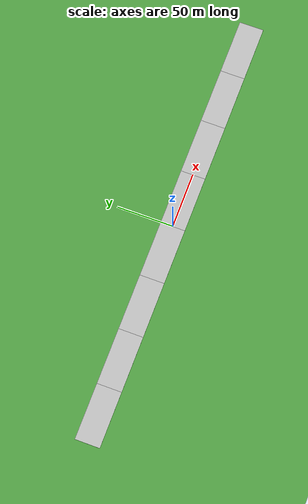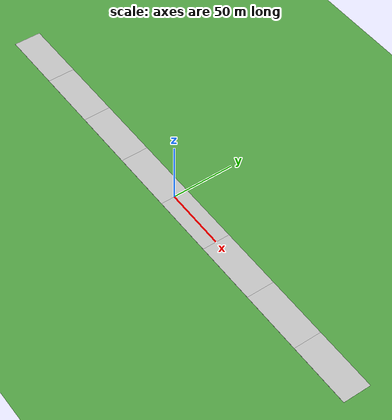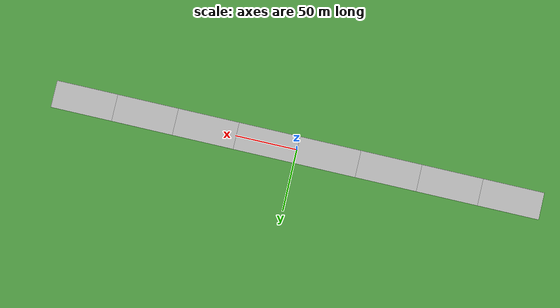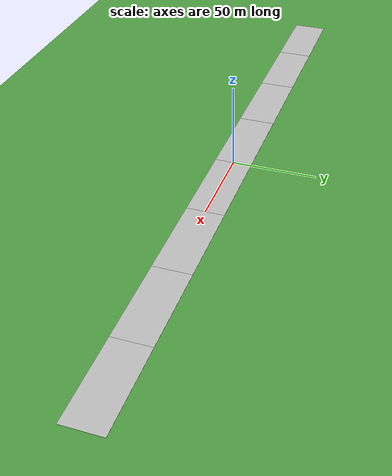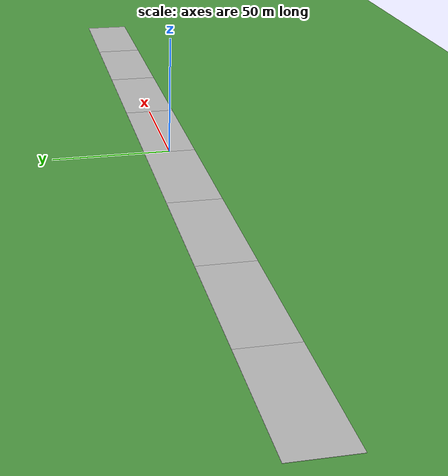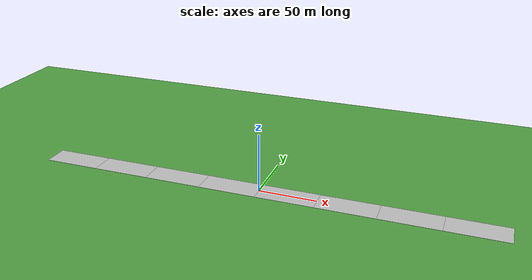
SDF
<sdf version="1.6">
 <world name="default">
  <light name="sun1" type="directional">
   <pose>0 0 1 0 -0 0</pose>
   <diffuse>0.8 0.8 0.8 1</diffuse>
   <specular>0.1 0.1 0.1 1</specular>
   <attenuation>
    <range>1000</range>
    <constant>0.9</constant>
    <linear>0.01</linear>
    <quadratic>0.001</quadratic>
   </attenuation>
   <direction>0.5 0 -0.5</direction>
  </light>
  <light name="sun2" type="directional">
   <pose>-200 0 1 0 -0 0</pose>
   <diffuse>0.8 0.8 0.8 1</diffuse>
   <specular>0.1 0.1 0.1 1</specular>
   <attenuation>
    <range>1000</range>
    <constant>0.9</constant>
    <linear>0.01</linear>
    <quadratic>0.001</quadratic>
   </attenuation>
   <direction>0.5 0 -0.5</direction>
  </light>
  <light name="sun3" type="directional">
   <pose>-100 0 1 0 -0 0</pose>
   <diffuse>0.8 0.8 0.8 1</diffuse>
   <specular>0.1 0.1 0.1 1</specular>
   <attenuation>
    <range>1000</range>
    <constant>0.9</constant>
    <linear>0.01</linear>
    <quadratic>0.001</quadratic>
   </attenuation>
   <direction>0.5 0 -0.5</direction>
  </light>
  <light name="sun4" type="directional">
   <pose>100 0 1 0 -0 0</pose>
   <diffuse>0.8 0.8 0.8 1</diffuse>
   <specular>0.1 0.1 0.1 1</specular>
   <attenuation>
    <range>1000</range>
    <constant>0.9</constant>
    <linear>0.01</linear>
    <quadratic>0.001</quadratic>
   </attenuation>
   <direction>0.5 0 -0.5</direction>
  </light>
  <gravity>0 0 -9.8</gravity>
  <magnetic_field>6e-06 2.3e-05 -4.2e-05</magnetic_field>
  <atmosphere type="adiabatic"/>
  <physics name="default_physics" default="0" type="ode">
   <max_step_size>0.001</max_step_size>
   <real_time_factor>1</real_time_factor>
   <real_time_update_rate>1000</real_time_update_rate>
  </physics>
  <scene><ambient>0.5 0.5 0.5 1</ambient><background>0.7 0.7 0.7 1</background><shadows>0</shadows></scene>
  <spherical_coordinates>
   <surface_model>EARTH_WGS84</surface_model>
   <latitude_deg>0</latitude_deg>
   <longitude_deg>0</longitude_deg>
   <elevation>0</elevation>
   <heading_deg>0</heading_deg>
  </spherical_coordinates>
  <model name="grass_plane">
   <static>1</static>
   <link name="link">
    <collision name="collision">
     <geometry><plane><normal>0 0 1</normal><size>1000 1000</size></plane></geometry>
     <surface><friction><ode><mu>100</mu><mu2>50</mu2></ode></friction></surface>
    </collision>
    <visual name="visual">
     <cast_shadows>0</cast_shadows>
     <geometry><plane><normal>0 0 1</normal><size>1000 1000</size></plane></geometry>
     <material>
      <script>
       <uri>model://ds_grass_background/materials/scripts</uri>
       <uri>model://ds_grass_background/materials/textures</uri>
       <name>GrassBackground</name>
      </script>
     </material>
    </visual>
   </link>
  </model>
  <model name="straight_4lane_50m">
   <link name="link_0">
    <inertial>
     <mass>1</mass>
     <inertia>
      <ixx>0.166667</ixx>
      <ixy>0</ixy>
      <ixz>0</ixz>
      <iyy>0.166667</iyy>
      <iyz>0</iyz>
      <izz>0.166667</izz>
     </inertia>
    </inertial>
    <visual name="visual">
     <geometry>
      <mesh><uri>model://straight_4lane_50m/straight_4lane_50m.dae</uri><scale>1 1 1</scale></mesh>
     </geometry>
    </visual>
    <collision name="collision">
     <geometry>
      <mesh><uri>model://straight_4lane_50m/straight_4lane_50m.dae</uri><scale>1 1 1</scale></mesh>
     </geometry>
     <surface>
      <friction>
       <ode><mu>1</mu><mu2>1</mu2><fdir1>0 0 0</fdir1><slip1>0</slip1><slip2>0</slip2></ode>
       <torsional>
        <coefficient>1</coefficient>
        <patch_radius>0</patch_radius>
        <surface_radius>0</surface_radius>
        <use_patch_radius>1</use_patch_radius>
        <ode><slip>0</slip></ode>
       </torsional>
      </friction>
      <bounce><restitution_coefficient>0</restitution_coefficient><threshold>1e+06</threshold></bounce>
      <contact>
       <collide_without_contact>0</collide_without_contact>
       <collide_without_contact_bitmask>1</collide_without_contact_bitmask>
       <collide_bitmask>1</collide_bitmask>
       <ode>
        <soft_cfm>0</soft_cfm>
        <soft_erp>0.2</soft_erp>
        <kp>1e+13</kp>
        <kd>1</kd>
        <max_vel>0.01</max_vel>
        <min_depth>0</min_depth>
       </ode>
       <bullet>
        <split_impulse>1</split_impulse>
        <split_impulse_penetration_threshold>-0.01</split_impulse_penetration_threshold>
        <soft_cfm>0</soft_cfm>
        <soft_erp>0.2</soft_erp>
        <kp>1e+13</kp>
        <kd>1</kd>
       </bullet>
      </contact>
     </surface>
    </collision>
   </link>
   <static>1</static>
   <pose>25 0 0 0 0 -1.5707</pose>
  </model>
  <model name="straight_4lane_50m_clone">
   <link name="link_0">
    <inertial>
     <mass>1</mass>
     <inertia>
      <ixx>0.166667</ixx>
      <ixy>0</ixy>
      <ixz>0</ixz>
      <iyy>0.166667</iyy>
      <iyz>0</iyz>
      <izz>0.166667</izz>
     </inertia>
    </inertial>
    <visual name="visual">
     <geometry>
      <mesh><uri>model://straight_4lane_50m/straight_4lane_50m.dae</uri><scale>1 1 1</scale></mesh>
     </geometry>
    </visual>
    <collision name="collision">
     <geometry>
      <mesh><uri>model://straight_4lane_50m/straight_4lane_50m.dae</uri><scale>1 1 1</scale></mesh>
     </geometry>
     <surface>
      <friction>
       <ode><mu>1</mu><mu2>1</mu2><fdir1>0 0 0</fdir1><slip1>0</slip1><slip2>0</slip2></ode>
       <torsional>
        <coefficient>1</coefficient>
        <patch_radius>0</patch_radius>
        <surface_radius>0</surface_radius>
        <use_patch_radius>1</use_patch_radius>
        <ode><slip>0</slip></ode>
       </torsional>
      </friction>
      <bounce><restitution_coefficient>0</restitution_coefficient><threshold>1e+06</threshold></bounce>
      <contact>
       <collide_without_contact>0</collide_without_contact>
       <collide_without_contact_bitmask>1</collide_without_contact_bitmask>
       <collide_bitmask>1</collide_bitmask>
       <ode>
        <soft_cfm>0</soft_cfm>
        <soft_erp>0.2</soft_erp>
        <kp>1e+13</kp>
        <kd>1</kd>
        <max_vel>0.01</max_vel>
        <min_depth>0</min_depth>
       </ode>
       <bullet>
        <split_impulse>1</split_impulse>
        <split_impulse_penetration_threshold>-0.01</split_impulse_penetration_threshold>
        <soft_cfm>0</soft_cfm>
        <soft_erp>0.2</soft_erp>
        <kp>1e+13</kp>
        <kd>1</kd>
       </bullet>
      </contact>
     </surface>
    </collision>
   </link>
   <static>1</static>
   <pose>-25 0 0 0 0 -1.5707</pose>
  </model>
  <model name="straight_4lane_50m_clone_0">
   <link name="link_0">
    <inertial>
     <mass>1</mass>
     <inertia>
      <ixx>0.166667</ixx>
      <ixy>0</ixy>
      <ixz>0</ixz>
      <iyy>0.166667</iyy>
      <iyz>0</iyz>
      <izz>0.166667</izz>
     </inertia>
    </inertial>
    <visual name="visual">
     <geometry>
      <mesh><uri>model://straight_4lane_50m/straight_4lane_50m.dae</uri><scale>1 1 1</scale></mesh>
     </geometry>
    </visual>
    <collision name="collision">
     <geometry>
      <mesh><uri>model://straight_4lane_50m/straight_4lane_50m.dae</uri><scale>1 1 1</scale></mesh>
     </geometry>
     <surface>
      <friction>
       <ode><mu>1</mu><mu2>1</mu2><fdir1>0 0 0</fdir1><slip1>0</slip1><slip2>0</slip2></ode>
       <torsional>
        <coefficient>1</coefficient>
        <patch_radius>0</patch_radius>
        <surface_radius>0</surface_radius>
        <use_patch_radius>1</use_patch_radius>
        <ode><slip>0</slip></ode>
       </torsional>
      </friction>
      <bounce><restitution_coefficient>0</restitution_coefficient><threshold>1e+06</threshold></bounce>
      <contact>
       <collide_without_contact>0</collide_without_contact>
       <collide_without_contact_bitmask>1</collide_without_contact_bitmask>
       <collide_bitmask>1</collide_bitmask>
       <ode>
        <soft_cfm>0</soft_cfm>
        <soft_erp>0.2</soft_erp>
        <kp>1e+13</kp>
        <kd>1</kd>
        <max_vel>0.01</max_vel>
        <min_depth>0</min_depth>
       </ode>
       <bullet>
        <split_impulse>1</split_impulse>
        <split_impulse_penetration_threshold>-0.01</split_impulse_penetration_threshold>
        <soft_cfm>0</soft_cfm>
        <soft_erp>0.2</soft_erp>
        <kp>1e+13</kp>
        <kd>1</kd>
       </bullet>
      </contact>
     </surface>
    </collision>
   </link>
   <static>1</static>
   <pose>-75 0 0 0 0 -1.5707</pose>
  </model>
  <model name="straight_4lane_50m_clone_1">
   <link name="link_0">
    <inertial>
     <mass>1</mass>
     <inertia>
      <ixx>0.166667</ixx>
      <ixy>0</ixy>
      <ixz>0</ixz>
      <iyy>0.166667</iyy>
      <iyz>0</iyz>
      <izz>0.166667</izz>
     </inertia>
    </inertial>
    <visual name="visual">
     <geometry>
      <mesh><uri>model://straight_4lane_50m/straight_4lane_50m.dae</uri><scale>1 1 1</scale></mesh>
     </geometry>
    </visual>
    <collision name="collision">
     <geometry>
      <mesh><uri>model://straight_4lane_50m/straight_4lane_50m.dae</uri><scale>1 1 1</scale></mesh>
     </geometry>
     <surface>
      <friction>
       <ode><mu>1</mu><mu2>1</mu2><fdir1>0 0 0</fdir1><slip1>0</slip1><slip2>0</slip2></ode>
       <torsional>
        <coefficient>1</coefficient>
        <patch_radius>0</patch_radius>
        <surface_radius>0</surface_radius>
        <use_patch_radius>1</use_patch_radius>
        <ode><slip>0</slip></ode>
       </torsional>
      </friction>
      <bounce><restitution_coefficient>0</restitution_coefficient><threshold>1e+06</threshold></bounce>
      <contact>
       <collide_without_contact>0</collide_without_contact>
       <collide_without_contact_bitmask>1</collide_without_contact_bitmask>
       <collide_bitmask>1</collide_bitmask>
       <ode>
        <soft_cfm>0</soft_cfm>
        <soft_erp>0.2</soft_erp>
        <kp>1e+13</kp>
        <kd>1</kd>
        <max_vel>0.01</max_vel>
        <min_depth>0</min_depth>
       </ode>
       <bullet>
        <split_impulse>1</split_impulse>
        <split_impulse_penetration_threshold>-0.01</split_impulse_penetration_threshold>
        <soft_cfm>0</soft_cfm>
        <soft_erp>0.2</soft_erp>
        <kp>1e+13</kp>
        <kd>1</kd>
       </bullet>
      </contact>
     </surface>
    </collision>
   </link>
   <static>1</static>
   <pose>75 0 0 0 0 -1.5707</pose>
  </model>
  <model name="straight_4lane_50m_clone_2">
   <link name="link_0">
    <inertial>
     <mass>1</mass>
     <inertia>
      <ixx>0.166667</ixx>
      <ixy>0</ixy>
      <ixz>0</ixz>
      <iyy>0.166667</iyy>
      <iyz>0</iyz>
      <izz>0.166667</izz>
     </inertia>
    </inertial>
    <visual name="visual">
     <geometry>
      <mesh><uri>model://straight_4lane_50m/straight_4lane_50m.dae</uri><scale>1 1 1</scale></mesh>
     </geometry>
    </visual>
    <collision name="collision">
     <geometry>
      <mesh><uri>model://straight_4lane_50m/straight_4lane_50m.dae</uri><scale>1 1 1</scale></mesh>
     </geometry>
     <surface>
      <friction>
       <ode><mu>1</mu><mu2>1</mu2><fdir1>0 0 0</fdir1><slip1>0</slip1><slip2>0</slip2></ode>
       <torsional>
        <coefficient>1</coefficient>
        <patch_radius>0</patch_radius>
        <surface_radius>0</surface_radius>
        <use_patch_radius>1</use_patch_radius>
        <ode><slip>0</slip></ode>
       </torsional>
      </friction>
      <bounce><restitution_coefficient>0</restitution_coefficient><threshold>1e+06</threshold></bounce>
      <contact>
       <collide_without_contact>0</collide_without_contact>
       <collide_without_contact_bitmask>1</collide_without_contact_bitmask>
       <collide_bitmask>1</collide_bitmask>
       <ode>
        <soft_cfm>0</soft_cfm>
        <soft_erp>0.2</soft_erp>
        <kp>1e+13</kp>
        <kd>1</kd>
        <max_vel>0.01</max_vel>
        <min_depth>0</min_depth>
       </ode>
       <bullet>
        <split_impulse>1</split_impulse>
        <split_impulse_penetration_threshold>-0.01</split_impulse_penetration_threshold>
        <soft_cfm>0</soft_cfm>
        <soft_erp>0.2</soft_erp>
        <kp>1e+13</kp>
        <kd>1</kd>
       </bullet>
      </contact>
     </surface>
    </collision>
   </link>
   <static>1</static>
   <pose>-125 0 0 0 0 -1.5707</pose>
  </model>
  <model name="straight_4lane_50m_clone_3">
   <link name="link_0">
    <inertial>
     <mass>1</mass>
     <inertia>
      <ixx>0.166667</ixx>
      <ixy>0</ixy>
      <ixz>0</ixz>
      <iyy>0.166667</iyy>
      <iyz>0</iyz>
      <izz>0.166667</izz>
     </inertia>
    </inertial>
    <visual name="visual">
     <geometry>
      <mesh><uri>model://straight_4lane_50m/straight_4lane_50m.dae</uri><scale>1 1 1</scale></mesh>
     </geometry>
    </visual>
    <collision name="collision">
     <geometry>
      <mesh><uri>model://straight_4lane_50m/straight_4lane_50m.dae</uri><scale>1 1 1</scale></mesh>
     </geometry>
     <surface>
      <friction>
       <ode><mu>1</mu><mu2>1</mu2><fdir1>0 0 0</fdir1><slip1>0</slip1><slip2>0</slip2></ode>
       <torsional>
        <coefficient>1</coefficient>
        <patch_radius>0</patch_radius>
        <surface_radius>0</surface_radius>
        <use_patch_radius>1</use_patch_radius>
        <ode><slip>0</slip></ode>
       </torsional>
      </friction>
      <bounce><restitution_coefficient>0</restitution_coefficient><threshold>1e+06</threshold></bounce>
      <contact>
       <collide_without_contact>0</collide_without_contact>
       <collide_without_contact_bitmask>1</collide_without_contact_bitmask>
       <collide_bitmask>1</collide_bitmask>
       <ode>
        <soft_cfm>0</soft_cfm>
        <soft_erp>0.2</soft_erp>
        <kp>1e+13</kp>
        <kd>1</kd>
        <max_vel>0.01</max_vel>
        <min_depth>0</min_depth>
       </ode>
       <bullet>
        <split_impulse>1</split_impulse>
        <split_impulse_penetration_threshold>-0.01</split_impulse_penetration_threshold>
        <soft_cfm>0</soft_cfm>
        <soft_erp>0.2</soft_erp>
        <kp>1e+13</kp>
        <kd>1</kd>
       </bullet>
      </contact>
     </surface>
    </collision>
   </link>
   <static>1</static>
   <pose>-175 0 0 0 0 -1.5707</pose>
  </model>
  <model name="straight_4lane_50m_clone_1_clone_0">
   <link name="link_0">
    <inertial>
     <mass>1</mass>
     <inertia>
      <ixx>0.166667</ixx>
      <ixy>0</ixy>
      <ixz>0</ixz>
      <iyy>0.166667</iyy>
      <iyz>0</iyz>
      <izz>0.166667</izz>
     </inertia>
    </inertial>
    <visual name="visual">
     <geometry>
      <mesh><uri>model://straight_4lane_50m/straight_4lane_50m.dae</uri><scale>1 1 1</scale></mesh>
     </geometry>
    </visual>
    <collision name="collision">
     <geometry>
      <mesh><uri>model://straight_4lane_50m/straight_4lane_50m.dae</uri><scale>1 1 1</scale></mesh>
     </geometry>
     <surface>
      <friction>
       <ode><mu>1</mu><mu2>1</mu2><fdir1>0 0 0</fdir1><slip1>0</slip1><slip2>0</slip2></ode>
       <torsional>
        <coefficient>1</coefficient>
        <patch_radius>0</patch_radius>
        <surface_radius>0</surface_radius>
        <use_patch_radius>1</use_patch_radius>
        <ode><slip>0</slip></ode>
       </torsional>
      </friction>
      <bounce><restitution_coefficient>0</restitution_coefficient><threshold>1e+06</threshold></bounce>
      <contact>
       <collide_without_contact>0</collide_without_contact>
       <collide_without_contact_bitmask>1</collide_without_contact_bitmask>
       <collide_bitmask>1</collide_bitmask>
       <ode>
        <soft_cfm>0</soft_cfm>
        <soft_erp>0.2</soft_erp>
        <kp>1e+13</kp>
        <kd>1</kd>
        <max_vel>0.01</max_vel>
        <min_depth>0</min_depth>
       </ode>
       <bullet>
        <split_impulse>1</split_impulse>
        <split_impulse_penetration_threshold>-0.01</split_impulse_penetration_threshold>
        <soft_cfm>0</soft_cfm>
        <soft_erp>0.2</soft_erp>
        <kp>1e+13</kp>
        <kd>1</kd>
       </bullet>
      </contact>
     </surface>
    </collision>
   </link>
   <static>1</static>
   <pose>175 0 0 0 0 -1.5707</pose>
  </model>
  <model name="straight_4lane_50m_0">
   <link name="link_0">
    <inertial>
     <mass>1</mass>
     <inertia>
      <ixx>0.166667</ixx>
      <ixy>0</ixy>
      <ixz>0</ixz>
      <iyy>0.166667</iyy>
      <iyz>0</iyz>
      <izz>0.166667</izz>
     </inertia>
    </inertial>
    <visual name="visual">
     <geometry>
      <mesh><uri>model://straight_4lane_50m/straight_4lane_50m.dae</uri><scale>1 1 1</scale></mesh>
     </geometry>
    </visual>
    <collision name="collision">
     <geometry>
      <mesh><uri>model://straight_4lane_50m/straight_4lane_50m.dae</uri><scale>1 1 1</scale></mesh>
     </geometry>
     <surface>
      <friction>
       <ode><mu>1</mu><mu2>1</mu2><fdir1>0 0 0</fdir1><slip1>0</slip1><slip2>0</slip2></ode>
       <torsional>
        <coefficient>1</coefficient>
        <patch_radius>0</patch_radius>
        <surface_radius>0</surface_radius>
        <use_patch_radius>1</use_patch_radius>
        <ode><slip>0</slip></ode>
       </torsional>
      </friction>
      <bounce><restitution_coefficient>0</restitution_coefficient><threshold>1e+06</threshold></bounce>
      <contact>
       <collide_without_contact>0</collide_without_contact>
       <collide_without_contact_bitmask>1</collide_without_contact_bitmask>
       <collide_bitmask>1</collide_bitmask>
       <ode>
        <soft_cfm>0</soft_cfm>
        <soft_erp>0.2</soft_erp>
        <kp>1e+13</kp>
        <kd>1</kd>
        <max_vel>0.01</max_vel>
        <min_depth>0</min_depth>
       </ode>
       <bullet>
        <split_impulse>1</split_impulse>
        <split_impulse_penetration_threshold>-0.01</split_impulse_penetration_threshold>
        <soft_cfm>0</soft_cfm>
        <soft_erp>0.2</soft_erp>
        <kp>1e+13</kp>
        <kd>1</kd>
       </bullet>
      </contact>
     </surface>
    </collision>
   </link>
   <static>1</static>
   <pose>125 0 0 0 0 -1.5707</pose>
  </model>
 </world>
</sdf>
